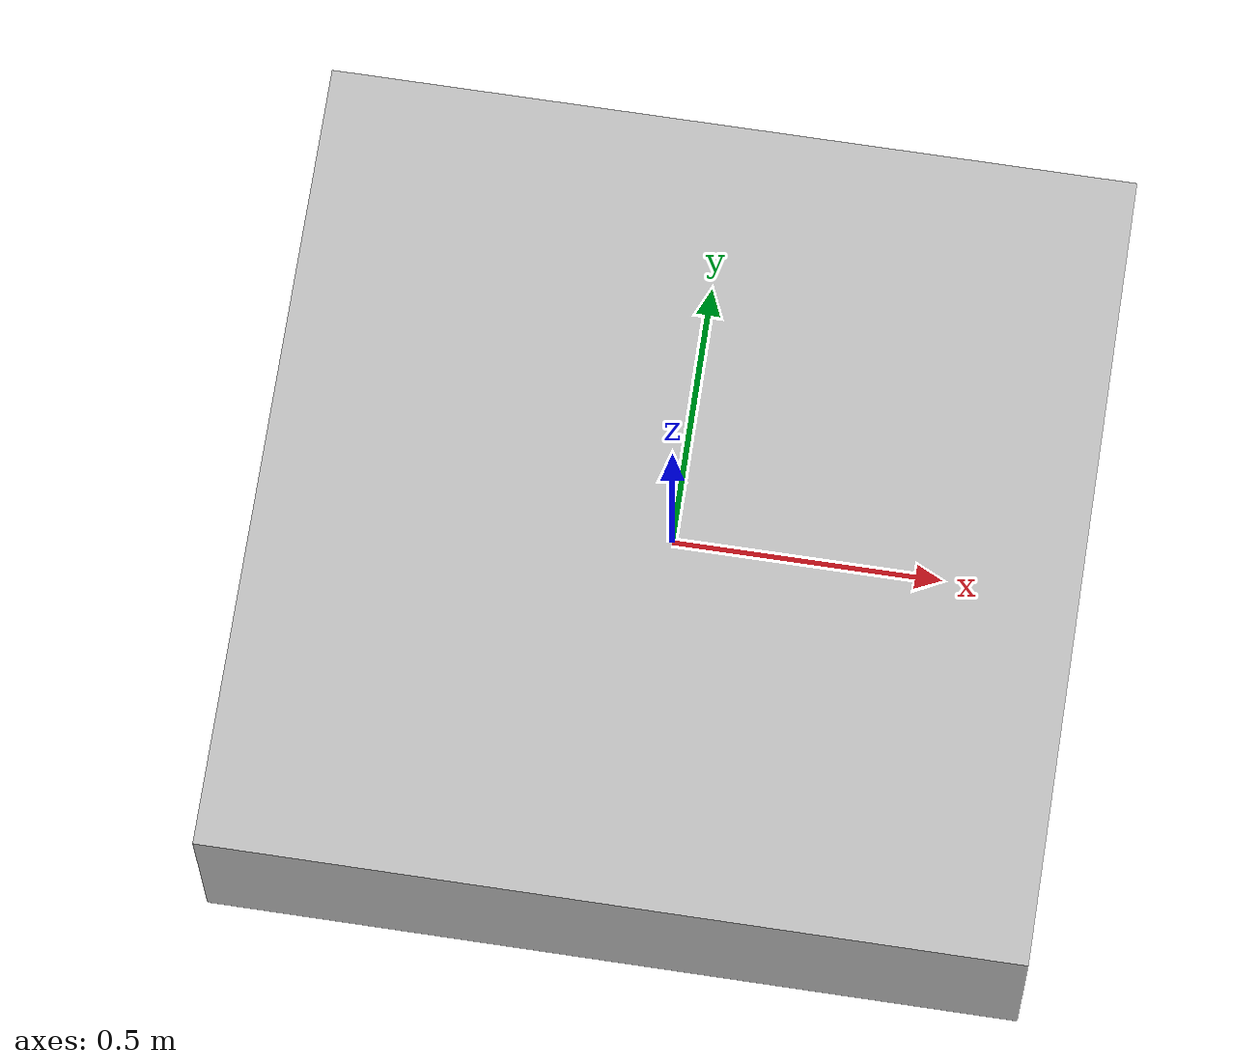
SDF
<?xml version="1.0" ?>
<sdf version="1.5">
  <model name="floor1">

      <pose>0 0 0 0 0 0</pose>

      <static>true</static>

      <link name="link">
      <collision name='collision'>
        <geometry>
          <box>
            <size>1.5 1.5 0.4</size>
          </box>
        </geometry>
      </collision>

      <visual name='visual'>
        <geometry>
          <box>
            <size>1.5 1.5 0.4</size>
          </box>
        </geometry>

        <material>
          <script>
            <uri>model://leobot_gazebo/models/floor1/materials/scripts</uri>
            <uri>model://leobot_gazebo/models/floor1/materials/textures</uri>
            <name>floor1/img1</name>
          </script>
        </material>
      </visual>
    </link>
  </model>
</sdf>
